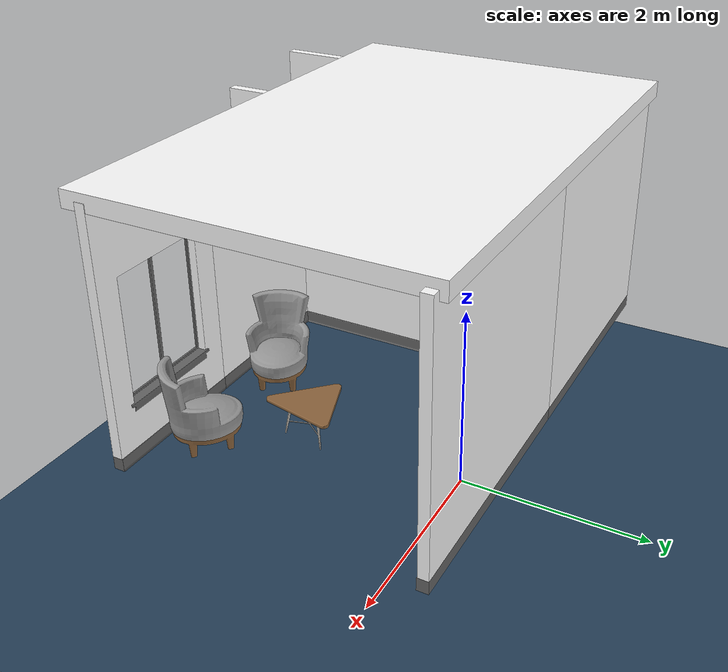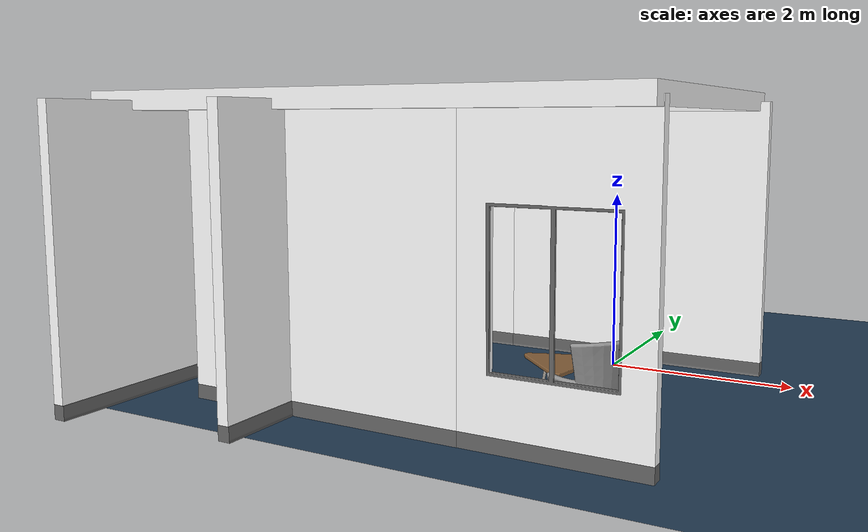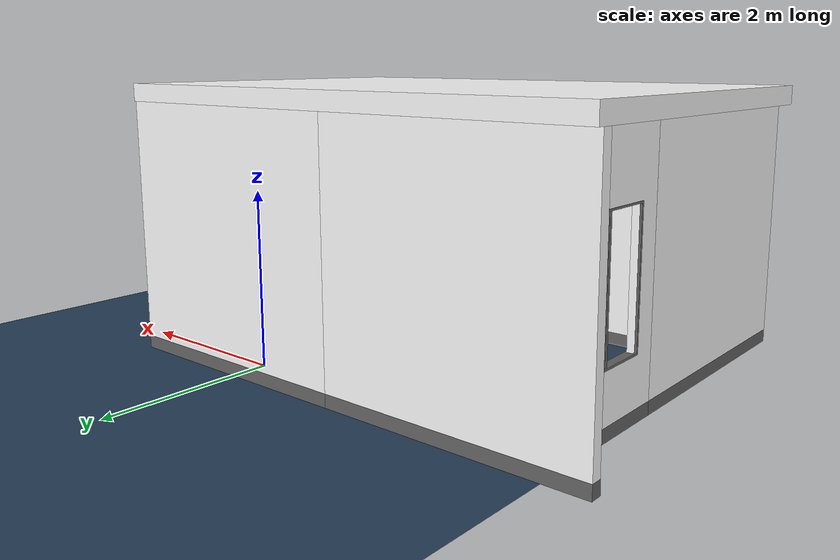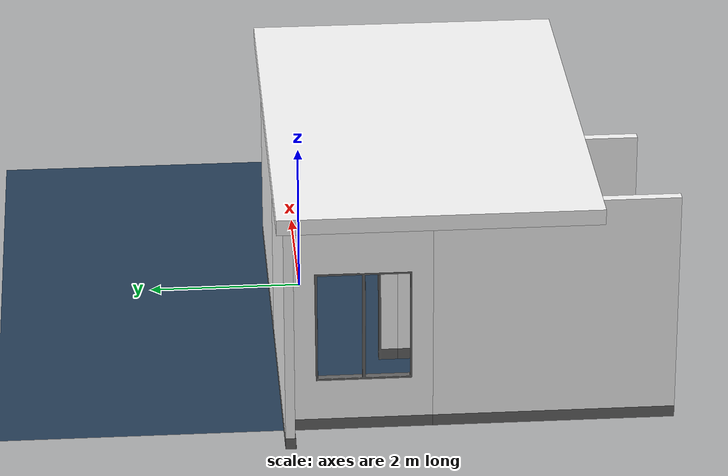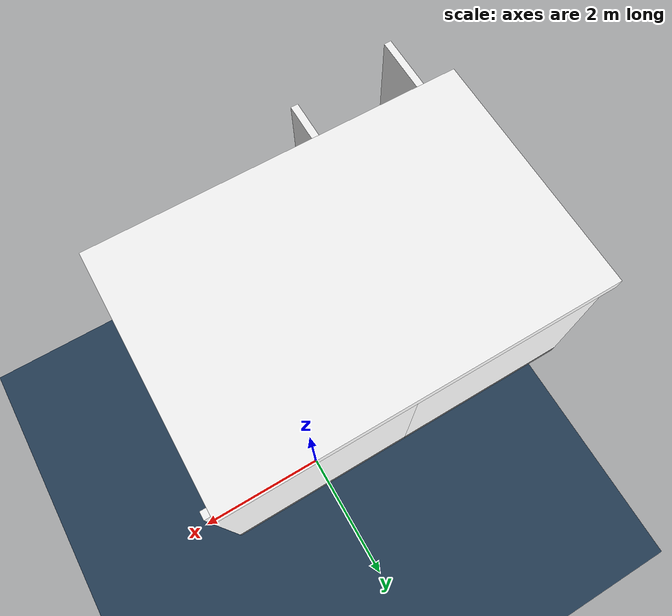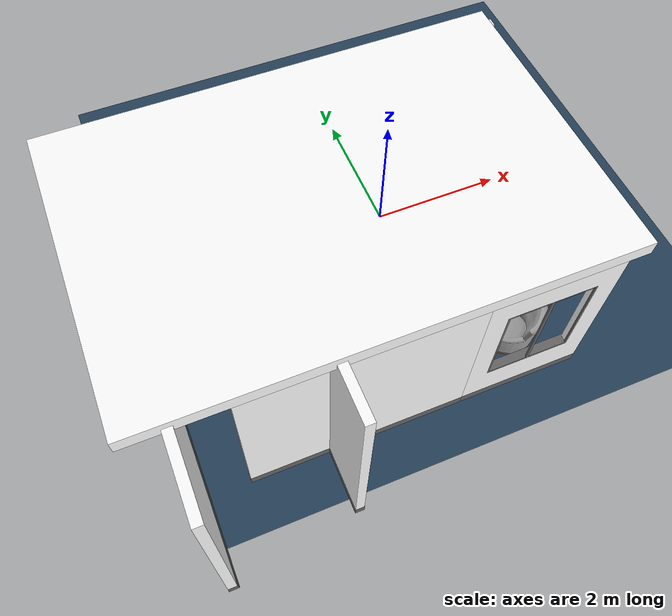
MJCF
<mujoco model="Playground">
    <compiler angle="radian" />
    <option timestep="0.001" noslip_iterations="20" />
    <size njmax="500" nconmax="500" nkey="2" />
    <visual>
        <global offwidth="4072" offheight="2262" />
        <quality shadowsize="2048" offsamples="8" />
        <headlight diffuse="0.6 0.6 0.6" specular="0 0 0" />
        <map fogstart="6" znear="0.01" />
        <scale forcewidth="0.01" framelength="0.3" framewidth="0.01" />
    </visual>
    <default class="main1">
        <default class="viz_stl_Metal_LR">
            <geom type="mesh" group="1" material="M_Metal_LR" />
        </default>
        <default class="viz_stl_Wood_cube_LR">
            <geom type="mesh" group="1" material="M_Wood_cube_LR" />
        </default>
        <default class="viz_stl_Wood_2d_LR">
            <geom type="mesh" group="1" material="M_Wood_2d_LR" />
        </default>
        <default class="viz_stl_Fabric_cube_LR">
            <geom type="mesh" group="1" material="M_Fabric_cube_LR" />
        </default>
        <default class="viz_stl_Fabric_2d_LR">
            <geom type="mesh" group="1" material="M_Fabric_2d_LR" />
        </default>
        <default class="viz_stl_Painting_cube_LR">
            <geom type="mesh" group="1" material="M_Painting_cube_LR" />
        </default>
        <default class="viz_drawer">
            <joint limited="true" armature="0.1" damping="2" frictionloss="5" />
            <geom contype="0" group="3" rgba="1 0 0 1" />
        </default>
        <default class="viz_body">
            <joint limited="true" armature="0.01" damping="1" frictionloss="0.5" />
            <geom contype="0" group="4" rgba="0 1 0 1" />
        </default>
    </default>
    <asset>
        <texture type="cube" name="T_Wood_cube_LR" file="../playroom/textures/Surface_wood_chipboard.jpg.png" />
        <texture type="2d" name="T_Wood_2d_LR" file="../playroom/textures/Surface_wood_chipboard.jpg.png" />
        <texture type="cube" name="T_Metal_LR" file="../playroom/textures/Texture_P7220210.JPG.png" />
        <texture type="cube" name="T_Fabric_cube_LR" file="../playroom/textures/Blue_Gray_knit_texture.jpg.png" />
        <texture type="2d" name="T_Fabric_2d_LR" file="../playroom/textures/Fabric_length_(AM_842431-1).jpg.png" />
        <texture type="cube" name="T_Painting_cube_LR" file="../playroom/textures/Coloured,_textured_craft_card_edit.jpg.png" />
        <texture type="2d" name="groundplane" builtin="checker" rgb1="0.2 0.3 0.4" rgb2="0.1 0.2 0.3" width="200" height="200" />
        <texture type="skybox" name="skybox" builtin="gradient" mark="random" rgb1="0.4 0.6 0.8" rgb2="0 0 0" markrgb="1 1 1" width="800" height="4800" />
        <material name="M_Fabric_cube_LR" texture="T_Fabric_cube_LR" shininess="0" />
        <material name="M_Fabric_2d_LR" texture="T_Fabric_2d_LR" texuniform="true" texrepeat="3 3" shininess="0" rgba="0.2 0.2 0.2 1" />
        <material name="groundplane" texture="groundplane" texrepeat="20 20" />
        <material name="M_Wood_cube_LR" texture="T_Wood_cube_LR" shininess="0.2" reflectance="0.3" rgba="0.8 0.8 0.8 1" />
        <material name="M_Wood_2d_LR" texture="T_Wood_2d_LR" shininess="0.2" reflectance="0.3" rgba="0.8 0.8 0.8 1" />
        <material name="M_Metal_LR" texture="T_Metal_LR" texrepeat="3 3" reflectance="0.7" />
        <material name="M_Painting_cube_LR" texture="T_Painting_cube_LR" shininess="0.2" reflectance="0.3" />
        <material name="MatViz" specular="1" shininess="0.1" reflectance="0.5" rgba="0.07 0.07 0.1 1" />
        <mesh name="SSC_Body" file="../playroom/meshes//SSC_Body.stl" scale="0.01 0.01 0.01" />
        <mesh name="SSC_Stand" file="../playroom/meshes//SSC_Stand.stl" scale="0.01 0.01 0.01" />
        <mesh name="Table_Top" file="../playroom/meshes//Table_Top.stl" scale="0.01 0.01 0.01" />
        <mesh name="Table_Bottom" file="../playroom/meshes//Table_Bottom.stl" scale="0.01 0.01 0.01" />
        <mesh name="Doorway_Top" file="../playroom/meshes//Doorway_Top.stl" scale="0.01 0.01 0.01" />
        <mesh name="Doorway_Bottom" file="../playroom/meshes//Doorway_Bottom.stl" scale="0.01 0.01 0.01" />
        <mesh name="Window_Top" file="../playroom/meshes//Window_Top.stl" scale="0.01 0.01 0.01" />
        <mesh name="Window_Bottom" file="../playroom/meshes//Window_Bottom.stl" scale="0.01 0.01 0.01" />
        <mesh name="Wall_Top" file="../playroom/meshes//Wall_Top.stl" scale="0.01 0.01 0.01" />
        <mesh name="Wall_Bottom" file="../playroom/meshes//Wall_Bottom.stl" scale="0.01 0.01 0.01" />
        <mesh name="Lamp_Top" file="../playroom/meshes//Lamp_Top.stl" scale="0.01 0.01 0.01" />
        <mesh name="Lamp_Stand" file="../playroom/meshes//Lamp_Stand.stl" scale="0.01 0.01 0.01" />
        <mesh name="Painting_Canvas" file="../playroom/meshes//Painting_Canvas.stl" scale="0.01 0.01 0.01" />
        <mesh name="Painting_Frame" file="../playroom/meshes//Painting_Frame.stl" scale="0.01 0.01 0.01" />
        <mesh name="StudyTable" file="../playroom/meshes//StudyTable.stl" scale="0.01 0.01 0.01" />
        <mesh name="Drawer_Wood" file="../playroom/meshes//Drawer_Wood.stl" scale="0.01 0.01 0.01" />
        <mesh name="Drawer_Handle" file="../playroom/meshes//Drawer_Handle.stl" scale="0.01 0.01 0.01" />
        <mesh name="Slide_Wood" file="../playroom/meshes//Slide_Wood.stl" scale="0.01 0.01 0.01" />
        <mesh name="Slide_Handle" file="../playroom/meshes//Slide_Handle.stl" scale="0.01 0.01 0.01" />
        <mesh name="BlockBin" file="../playroom/meshes//BlockBin.stl" scale="0.01 0.01 0.01" />
    </asset>
    <worldbody>
        <geom size="4 4 0.25" type="plane" material="groundplane" />
        <light directional="true" ambient="0.2 0.2 0.2" diffuse="0.8 0.8 0.8" specular="0.3 0.3 0.3" castshadow="false" pos="-1.7 -2.8 2" dir="0 0 -1" name="light1"></light>
        <light directional="true" ambient="0.2 0.2 0.2" diffuse="0.8 0.8 0.8" specular="0.3 0.3 0.3" castshadow="false" pos="-3.6 0 2" dir="0 0 -1" name="light2"></light>

        <body name="SSC_01" pos="0.7 -2.7 0.02" quat="-0.416147 0 0 0.909297">
            <inertial pos="-1.69568e-05 0.102849 0.460734" quat="0.665175 -0.239795 0.239645 0.66529" mass="255.007" diaginertia="25.2596 22.2539 12.2075" />
            <geom class="viz_stl_Fabric_cube_LR" contype="0" conaffinity="0" mesh="SSC_Body" />
            <geom class="viz_stl_Wood_cube_LR" contype="0" conaffinity="0" mesh="SSC_Stand" />
        </body>
        <body name="SSC_02" pos="-0.7 -2.7 0.02" quat="0.540302 0 0 0.841471">
            <inertial pos="-1.69568e-05 0.102849 0.460734" quat="0.665175 -0.239795 0.239645 0.66529" mass="255.007" diaginertia="25.2596 22.2539 12.2075" />
            <geom class="viz_stl_Fabric_cube_LR" contype="0" conaffinity="0" mesh="SSC_Body" />
            <geom class="viz_stl_Wood_cube_LR" contype="0" conaffinity="0" mesh="SSC_Stand" />
        </body>
        <body name="Table" pos="0.1 -1.85 0.02" quat="-0.801144 0 0 0.598472">
            <inertial pos="-0.0771861 6.57209e-05 0.268149" quat="0.0822003 0.714375 -0.0781205 0.690514" mass="74.2001" diaginertia="2.9359 2.61546 2.24078" />
            <geom class="viz_stl_Wood_2d_LR" contype="0" conaffinity="0" mesh="Table_Top" />
            <geom class="viz_stl_Metal_LR" contype="0" conaffinity="0" mesh="Table_Bottom" />
        </body>
        <body name="Wall_01" pos="1.6 0.3 0">
            <inertial pos="-1.524 0.0597068 1.72544" quat="0.500185 0.499815 0.500185 0.499815" mass="1066.43" diaginertia="1605.4 905.276 702.954" />
            <geom type="mesh" contype="0" conaffinity="0" group="1" rgba="1 1 1 1" mesh="Wall_Top" />
            <geom type="mesh" contype="0" conaffinity="0" group="1" rgba="0.4 0.4 0.4 1" mesh="Wall_Bottom" />
        </body>
        <body name="Window_03" pos="-0.27 -3.2 0" quat="0.000296327 0 0 1">
            <inertial pos="-0.888568 0.0609232 1.3669" quat="0.707098 -0.00125646 0.00119453 0.707113" mass="894.917" diaginertia="996.607 768.536 230.185" />
            <geom type="mesh" contype="0" conaffinity="0" group="1" rgba="1 1 1 1" mesh="Window_Top" />
            <geom type="mesh" contype="0" conaffinity="0" group="1" rgba="0.4 0.4 0.4 1" mesh="Window_Bottom" />
        </body>
        <body name="Wall_02" pos="-3.318 -3.2 0" quat="0.000296327 0 0 1">
            <inertial pos="-1.524 0.0597068 1.72544" quat="0.500185 0.499815 0.500185 0.499815" mass="1066.43" diaginertia="1605.4 905.276 702.954" />
            <geom type="mesh" contype="0" conaffinity="0" group="1" rgba="1 1 1 1" mesh="Wall_Top" />
            <geom type="mesh" contype="0" conaffinity="0" group="1" rgba="0.4 0.4 0.4 1" mesh="Wall_Bottom" />
        </body>
        <body name="Wall_03" pos="-1.447 0.3 0">
            <inertial pos="-1.524 0.0597068 1.72544" quat="0.500185 0.499815 0.500185 0.499815" mass="1066.43" diaginertia="1605.4 905.276 702.954" />
            <geom type="mesh" contype="0" conaffinity="0" group="1" rgba="1 1 1 1" mesh="Wall_Top" />
            <geom type="mesh" contype="0" conaffinity="0" group="1" rgba="0.4 0.4 0.4 1" mesh="Wall_Bottom" />
        </body>
        <body name="Doorway_01" pos="-2.1 0.3 0" quat="0.707035 0 0 0.707179">
            <inertial pos="-0.761487 0.0559083 1.67853" quat="0.707106 -0.00122681 0.00122681 0.707106" mass="803.811" diaginertia="634.086 474.182 161.903" />
            <geom type="mesh" contype="0" conaffinity="0" group="1" rgba="1 1 1 1" mesh="Doorway_Top" />
            <geom type="mesh" contype="0" conaffinity="0" group="1" rgba="0.4 0.4 0.4 1" mesh="Doorway_Bottom" />
        </body>
        <body name="Wall_04" pos="-2.1 -1.15 0" quat="0.707035 0 0 0.707179">
            <inertial pos="-1.524 0.0597068 1.72544" quat="0.500185 0.499815 0.500185 0.499815" mass="1066.43" diaginertia="1605.4 905.276 702.954" />
            <geom type="mesh" contype="0" conaffinity="0" group="1" rgba="1 1 1 1" mesh="Wall_Top" />
            <geom type="mesh" contype="0" conaffinity="0" group="1" rgba="0.4 0.4 0.4 1" mesh="Wall_Bottom" />
        </body>
        <body name="Window_04" pos="-3.9 0.3 0" quat="0.707035 0 0 0.707179">
            <inertial pos="-0.888568 0.0609232 1.3669" quat="0.707098 -0.00125646 0.00119453 0.707113" mass="894.917" diaginertia="996.607 768.536 230.185" />
            <geom type="mesh" contype="0" conaffinity="0" group="1" rgba="1 1 1 1" mesh="Window_Top" />
            <geom type="mesh" contype="0" conaffinity="0" group="1" rgba="0.4 0.4 0.4 1" mesh="Window_Bottom" />
        </body>
        <body name="Wall_05" pos="-3.9 -1.45 0" quat="0.707035 0 0 0.707179">
            <inertial pos="-1.524 0.0597068 1.72544" quat="0.500185 0.499815 0.500185 0.499815" mass="1066.43" diaginertia="1605.4 905.276 702.954" />
            <geom type="mesh" contype="0" conaffinity="0" group="1" rgba="1 1 1 1" mesh="Wall_Top" />
            <geom type="mesh" contype="0" conaffinity="0" group="1" rgba="0.4 0.4 0.4 1" mesh="Wall_Bottom" />
        </body>
        <body name="Ceiling" pos="-1.5 -1.5 3.048" quat="0.707035 0 0 0.707179">
            <inertial pos="0 0 0" mass="4800" diaginertia="14416 6416 20800" />
            <geom size="2 3 0.1" type="box" contype="0" conaffinity="0" group="1" rgba="1 1 1 1" />
        </body>
    </worldbody>
</mujoco>
